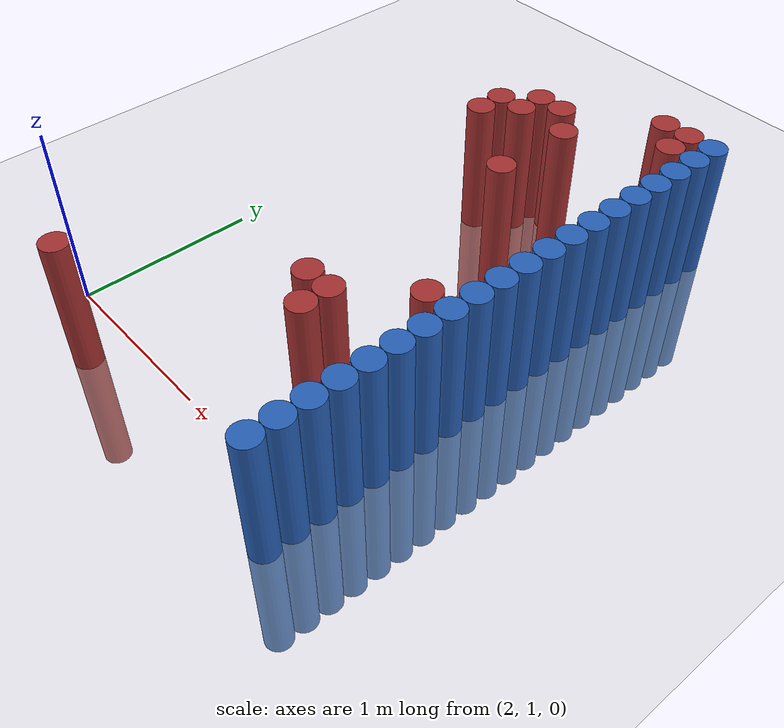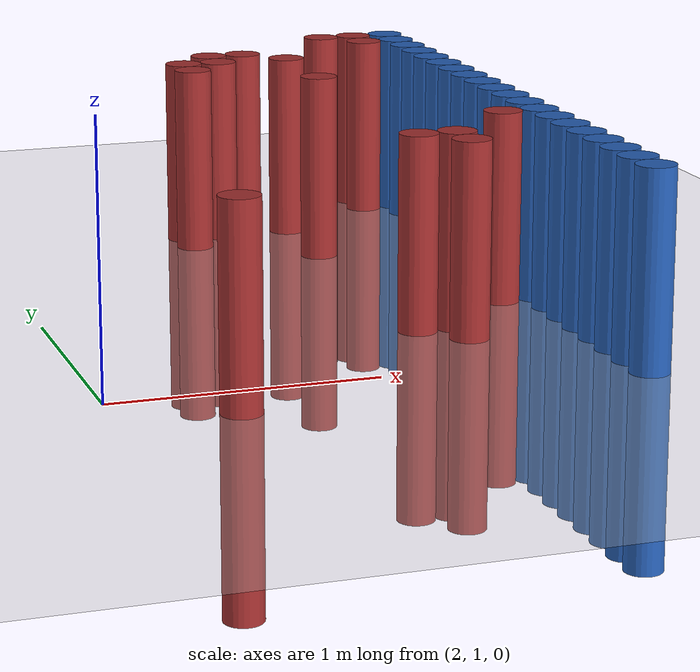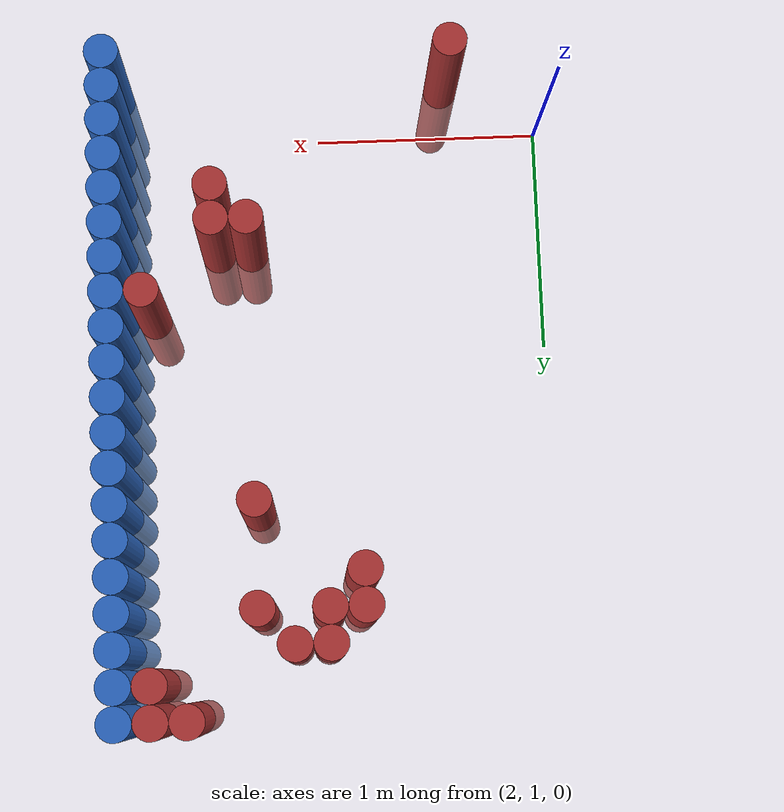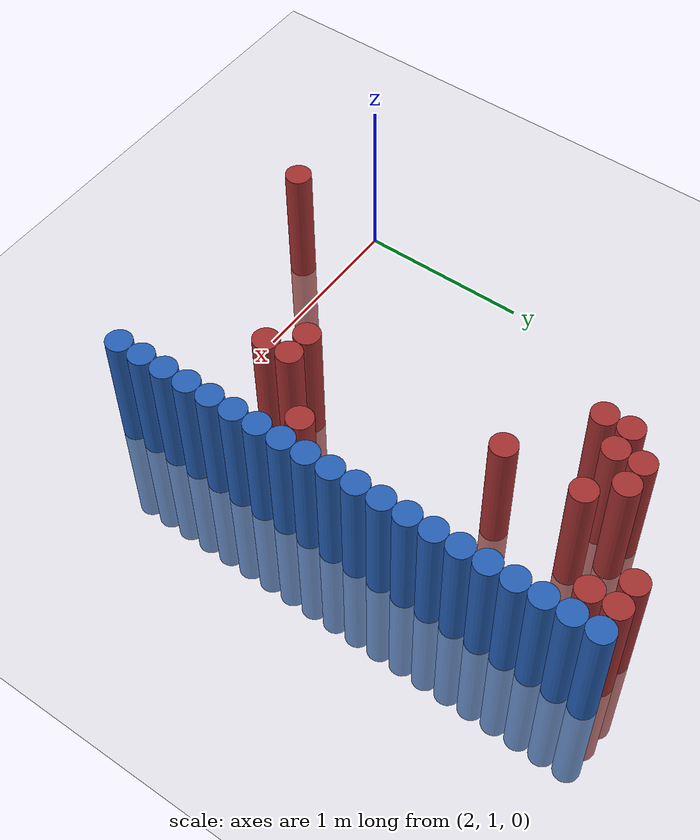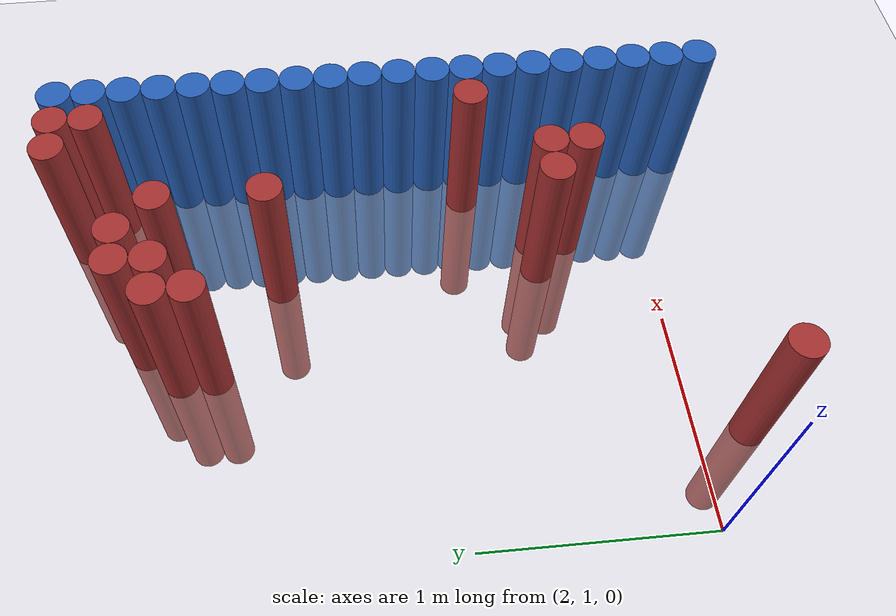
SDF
<sdf version="1.6">
 <world name="default">
  <model name="ground_plane">
   <static>1</static>
   <link name="link">
    <collision name="collision">
     <geometry><plane><normal>0 0 1</normal><size>100 100</size></plane></geometry>
     <surface><friction><ode><mu>100</mu><mu2>50</mu2></ode></friction></surface>
    </collision>
    <visual name="visual">
     <cast_shadows>0</cast_shadows>
     <geometry><plane><normal>0 0 1</normal><size>100 100</size></plane></geometry>
     <material>
      <script><uri>file://media/materials/scripts/gazebo.material</uri><name>Gazebo/Grey</name></script>
     </material>
    </visual>
   </link>
  </model>
  <model name="unit_cylinder_126">
   <static>1</static>
   <pose>3.925000 0.925000 0.000000 0.000000 0.000000 0.000000</pose>
   <link name="link">
    <inertial>
     <mass>1</mass>
     <inertia><ixx>0.145833</ixx><ixy>0</ixy><ixz>0</ixz><iyy>0.145833</iyy><iyz>0</iyz><izz>0.125</izz></inertia>
    </inertial>
    <collision name="collision">
     <geometry><cylinder><radius>0.075000</radius><length>1.5</length></cylinder></geometry>
    </collision>
    <visual name="visual">
     <geometry><cylinder><radius>0.075000</radius><length>1.5</length></cylinder></geometry>
     <material>
      <ambient>0.152000 0.379000 0.720000 1</ambient>
      <diffuse>0.152000 0.379000 0.720000 1</diffuse>
     </material>
     <material>
      <script><name>Gazebo/Grey</name><uri>file://media/materials/scripts/gazebo.material</uri></script>
     </material>
    </visual>
   </link>
  </model>
  <model name="unit_cylinder_128">
   <static>1</static>
   <pose>3.925000 1.075000 0.000000 0.000000 0.000000 0.000000</pose>
   <link name="link">
    <inertial>
     <mass>1</mass>
     <inertia><ixx>0.145833</ixx><ixy>0</ixy><ixz>0</ixz><iyy>0.145833</iyy><iyz>0</iyz><izz>0.125</izz></inertia>
    </inertial>
    <collision name="collision">
     <geometry><cylinder><radius>0.075000</radius><length>1.5</length></cylinder></geometry>
    </collision>
    <visual name="visual">
     <geometry><cylinder><radius>0.075000</radius><length>1.5</length></cylinder></geometry>
     <material>
      <ambient>0.152000 0.379000 0.720000 1</ambient>
      <diffuse>0.152000 0.379000 0.720000 1</diffuse>
     </material>
     <material>
      <script><name>Gazebo/Grey</name><uri>file://media/materials/scripts/gazebo.material</uri></script>
     </material>
    </visual>
   </link>
  </model>
  <model name="unit_cylinder_130">
   <static>1</static>
   <pose>3.925000 1.225000 0.000000 0.000000 0.000000 0.000000</pose>
   <link name="link">
    <inertial>
     <mass>1</mass>
     <inertia><ixx>0.145833</ixx><ixy>0</ixy><ixz>0</ixz><iyy>0.145833</iyy><iyz>0</iyz><izz>0.125</izz></inertia>
    </inertial>
    <collision name="collision">
     <geometry><cylinder><radius>0.075000</radius><length>1.5</length></cylinder></geometry>
    </collision>
    <visual name="visual">
     <geometry><cylinder><radius>0.075000</radius><length>1.5</length></cylinder></geometry>
     <material>
      <ambient>0.152000 0.379000 0.720000 1</ambient>
      <diffuse>0.152000 0.379000 0.720000 1</diffuse>
     </material>
     <material>
      <script><name>Gazebo/Grey</name><uri>file://media/materials/scripts/gazebo.material</uri></script>
     </material>
    </visual>
   </link>
  </model>
  <model name="unit_cylinder_132">
   <static>1</static>
   <pose>3.925000 1.375000 0.000000 0.000000 0.000000 0.000000</pose>
   <link name="link">
    <inertial>
     <mass>1</mass>
     <inertia><ixx>0.145833</ixx><ixy>0</ixy><ixz>0</ixz><iyy>0.145833</iyy><iyz>0</iyz><izz>0.125</izz></inertia>
    </inertial>
    <collision name="collision">
     <geometry><cylinder><radius>0.075000</radius><length>1.5</length></cylinder></geometry>
    </collision>
    <visual name="visual">
     <geometry><cylinder><radius>0.075000</radius><length>1.5</length></cylinder></geometry>
     <material>
      <ambient>0.152000 0.379000 0.720000 1</ambient>
      <diffuse>0.152000 0.379000 0.720000 1</diffuse>
     </material>
     <material>
      <script><name>Gazebo/Grey</name><uri>file://media/materials/scripts/gazebo.material</uri></script>
     </material>
    </visual>
   </link>
  </model>
  <model name="unit_cylinder_134">
   <static>1</static>
   <pose>3.925000 1.525000 0.000000 0.000000 0.000000 0.000000</pose>
   <link name="link">
    <inertial>
     <mass>1</mass>
     <inertia><ixx>0.145833</ixx><ixy>0</ixy><ixz>0</ixz><iyy>0.145833</iyy><iyz>0</iyz><izz>0.125</izz></inertia>
    </inertial>
    <collision name="collision">
     <geometry><cylinder><radius>0.075000</radius><length>1.5</length></cylinder></geometry>
    </collision>
    <visual name="visual">
     <geometry><cylinder><radius>0.075000</radius><length>1.5</length></cylinder></geometry>
     <material>
      <ambient>0.152000 0.379000 0.720000 1</ambient>
      <diffuse>0.152000 0.379000 0.720000 1</diffuse>
     </material>
     <material>
      <script><name>Gazebo/Grey</name><uri>file://media/materials/scripts/gazebo.material</uri></script>
     </material>
    </visual>
   </link>
  </model>
  <model name="unit_cylinder_136">
   <static>1</static>
   <pose>3.925000 1.675000 0.000000 0.000000 0.000000 0.000000</pose>
   <link name="link">
    <inertial>
     <mass>1</mass>
     <inertia><ixx>0.145833</ixx><ixy>0</ixy><ixz>0</ixz><iyy>0.145833</iyy><iyz>0</iyz><izz>0.125</izz></inertia>
    </inertial>
    <collision name="collision">
     <geometry><cylinder><radius>0.075000</radius><length>1.5</length></cylinder></geometry>
    </collision>
    <visual name="visual">
     <geometry><cylinder><radius>0.075000</radius><length>1.5</length></cylinder></geometry>
     <material>
      <ambient>0.152000 0.379000 0.720000 1</ambient>
      <diffuse>0.152000 0.379000 0.720000 1</diffuse>
     </material>
     <material>
      <script><name>Gazebo/Grey</name><uri>file://media/materials/scripts/gazebo.material</uri></script>
     </material>
    </visual>
   </link>
  </model>
  <model name="unit_cylinder_138">
   <static>1</static>
   <pose>3.925000 1.825000 0.000000 0.000000 0.000000 0.000000</pose>
   <link name="link">
    <inertial>
     <mass>1</mass>
     <inertia><ixx>0.145833</ixx><ixy>0</ixy><ixz>0</ixz><iyy>0.145833</iyy><iyz>0</iyz><izz>0.125</izz></inertia>
    </inertial>
    <collision name="collision">
     <geometry><cylinder><radius>0.075000</radius><length>1.5</length></cylinder></geometry>
    </collision>
    <visual name="visual">
     <geometry><cylinder><radius>0.075000</radius><length>1.5</length></cylinder></geometry>
     <material>
      <ambient>0.152000 0.379000 0.720000 1</ambient>
      <diffuse>0.152000 0.379000 0.720000 1</diffuse>
     </material>
     <material>
      <script><name>Gazebo/Grey</name><uri>file://media/materials/scripts/gazebo.material</uri></script>
     </material>
    </visual>
   </link>
  </model>
  <model name="unit_cylinder_140">
   <static>1</static>
   <pose>3.925000 1.975000 0.000000 0.000000 0.000000 0.000000</pose>
   <link name="link">
    <inertial>
     <mass>1</mass>
     <inertia><ixx>0.145833</ixx><ixy>0</ixy><ixz>0</ixz><iyy>0.145833</iyy><iyz>0</iyz><izz>0.125</izz></inertia>
    </inertial>
    <collision name="collision">
     <geometry><cylinder><radius>0.075000</radius><length>1.5</length></cylinder></geometry>
    </collision>
    <visual name="visual">
     <geometry><cylinder><radius>0.075000</radius><length>1.5</length></cylinder></geometry>
     <material>
      <ambient>0.152000 0.379000 0.720000 1</ambient>
      <diffuse>0.152000 0.379000 0.720000 1</diffuse>
     </material>
     <material>
      <script><name>Gazebo/Grey</name><uri>file://media/materials/scripts/gazebo.material</uri></script>
     </material>
    </visual>
   </link>
  </model>
  <model name="unit_cylinder_142">
   <static>1</static>
   <pose>3.925000 2.125000 0.000000 0.000000 0.000000 0.000000</pose>
   <link name="link">
    <inertial>
     <mass>1</mass>
     <inertia><ixx>0.145833</ixx><ixy>0</ixy><ixz>0</ixz><iyy>0.145833</iyy><iyz>0</iyz><izz>0.125</izz></inertia>
    </inertial>
    <collision name="collision">
     <geometry><cylinder><radius>0.075000</radius><length>1.5</length></cylinder></geometry>
    </collision>
    <visual name="visual">
     <geometry><cylinder><radius>0.075000</radius><length>1.5</length></cylinder></geometry>
     <material>
      <ambient>0.152000 0.379000 0.720000 1</ambient>
      <diffuse>0.152000 0.379000 0.720000 1</diffuse>
     </material>
     <material>
      <script><name>Gazebo/Grey</name><uri>file://media/materials/scripts/gazebo.material</uri></script>
     </material>
    </visual>
   </link>
  </model>
  <model name="unit_cylinder_144">
   <static>1</static>
   <pose>3.925000 2.275000 0.000000 0.000000 0.000000 0.000000</pose>
   <link name="link">
    <inertial>
     <mass>1</mass>
     <inertia><ixx>0.145833</ixx><ixy>0</ixy><ixz>0</ixz><iyy>0.145833</iyy><iyz>0</iyz><izz>0.125</izz></inertia>
    </inertial>
    <collision name="collision">
     <geometry><cylinder><radius>0.075000</radius><length>1.5</length></cylinder></geometry>
    </collision>
    <visual name="visual">
     <geometry><cylinder><radius>0.075000</radius><length>1.5</length></cylinder></geometry>
     <material>
      <ambient>0.152000 0.379000 0.720000 1</ambient>
      <diffuse>0.152000 0.379000 0.720000 1</diffuse>
     </material>
     <material>
      <script><name>Gazebo/Grey</name><uri>file://media/materials/scripts/gazebo.material</uri></script>
     </material>
    </visual>
   </link>
  </model>
  <model name="unit_cylinder_146">
   <static>1</static>
   <pose>3.925000 2.425000 0.000000 0.000000 0.000000 0.000000</pose>
   <link name="link">
    <inertial>
     <mass>1</mass>
     <inertia><ixx>0.145833</ixx><ixy>0</ixy><ixz>0</ixz><iyy>0.145833</iyy><iyz>0</iyz><izz>0.125</izz></inertia>
    </inertial>
    <collision name="collision">
     <geometry><cylinder><radius>0.075000</radius><length>1.5</length></cylinder></geometry>
    </collision>
    <visual name="visual">
     <geometry><cylinder><radius>0.075000</radius><length>1.5</length></cylinder></geometry>
     <material>
      <ambient>0.152000 0.379000 0.720000 1</ambient>
      <diffuse>0.152000 0.379000 0.720000 1</diffuse>
     </material>
     <material>
      <script><name>Gazebo/Grey</name><uri>file://media/materials/scripts/gazebo.material</uri></script>
     </material>
    </visual>
   </link>
  </model>
  <model name="unit_cylinder_148">
   <static>1</static>
   <pose>3.925000 2.575000 0.000000 0.000000 0.000000 0.000000</pose>
   <link name="link">
    <inertial>
     <mass>1</mass>
     <inertia><ixx>0.145833</ixx><ixy>0</ixy><ixz>0</ixz><iyy>0.145833</iyy><iyz>0</iyz><izz>0.125</izz></inertia>
    </inertial>
    <collision name="collision">
     <geometry><cylinder><radius>0.075000</radius><length>1.5</length></cylinder></geometry>
    </collision>
    <visual name="visual">
     <geometry><cylinder><radius>0.075000</radius><length>1.5</length></cylinder></geometry>
     <material>
      <ambient>0.152000 0.379000 0.720000 1</ambient>
      <diffuse>0.152000 0.379000 0.720000 1</diffuse>
     </material>
     <material>
      <script><name>Gazebo/Grey</name><uri>file://media/materials/scripts/gazebo.material</uri></script>
     </material>
    </visual>
   </link>
  </model>
  <model name="unit_cylinder_150">
   <static>1</static>
   <pose>3.925000 2.725000 0.000000 0.000000 0.000000 0.000000</pose>
   <link name="link">
    <inertial>
     <mass>1</mass>
     <inertia><ixx>0.145833</ixx><ixy>0</ixy><ixz>0</ixz><iyy>0.145833</iyy><iyz>0</iyz><izz>0.125</izz></inertia>
    </inertial>
    <collision name="collision">
     <geometry><cylinder><radius>0.075000</radius><length>1.5</length></cylinder></geometry>
    </collision>
    <visual name="visual">
     <geometry><cylinder><radius>0.075000</radius><length>1.5</length></cylinder></geometry>
     <material>
      <ambient>0.152000 0.379000 0.720000 1</ambient>
      <diffuse>0.152000 0.379000 0.720000 1</diffuse>
     </material>
     <material>
      <script><name>Gazebo/Grey</name><uri>file://media/materials/scripts/gazebo.material</uri></script>
     </material>
    </visual>
   </link>
  </model>
  <model name="unit_cylinder_152">
   <static>1</static>
   <pose>3.925000 2.875000 0.000000 0.000000 0.000000 0.000000</pose>
   <link name="link">
    <inertial>
     <mass>1</mass>
     <inertia><ixx>0.145833</ixx><ixy>0</ixy><ixz>0</ixz><iyy>0.145833</iyy><iyz>0</iyz><izz>0.125</izz></inertia>
    </inertial>
    <collision name="collision">
     <geometry><cylinder><radius>0.075000</radius><length>1.5</length></cylinder></geometry>
    </collision>
    <visual name="visual">
     <geometry><cylinder><radius>0.075000</radius><length>1.5</length></cylinder></geometry>
     <material>
      <ambient>0.152000 0.379000 0.720000 1</ambient>
      <diffuse>0.152000 0.379000 0.720000 1</diffuse>
     </material>
     <material>
      <script><name>Gazebo/Grey</name><uri>file://media/materials/scripts/gazebo.material</uri></script>
     </material>
    </visual>
   </link>
  </model>
  <model name="unit_cylinder_154">
   <static>1</static>
   <pose>3.925000 3.025000 0.000000 0.000000 0.000000 0.000000</pose>
   <link name="link">
    <inertial>
     <mass>1</mass>
     <inertia><ixx>0.145833</ixx><ixy>0</ixy><ixz>0</ixz><iyy>0.145833</iyy><iyz>0</iyz><izz>0.125</izz></inertia>
    </inertial>
    <collision name="collision">
     <geometry><cylinder><radius>0.075000</radius><length>1.5</length></cylinder></geometry>
    </collision>
    <visual name="visual">
     <geometry><cylinder><radius>0.075000</radius><length>1.5</length></cylinder></geometry>
     <material>
      <ambient>0.152000 0.379000 0.720000 1</ambient>
      <diffuse>0.152000 0.379000 0.720000 1</diffuse>
     </material>
     <material>
      <script><name>Gazebo/Grey</name><uri>file://media/materials/scripts/gazebo.material</uri></script>
     </material>
    </visual>
   </link>
  </model>
  <model name="unit_cylinder_156">
   <static>1</static>
   <pose>3.925000 3.175000 0.000000 0.000000 0.000000 0.000000</pose>
   <link name="link">
    <inertial>
     <mass>1</mass>
     <inertia><ixx>0.145833</ixx><ixy>0</ixy><ixz>0</ixz><iyy>0.145833</iyy><iyz>0</iyz><izz>0.125</izz></inertia>
    </inertial>
    <collision name="collision">
     <geometry><cylinder><radius>0.075000</radius><length>1.5</length></cylinder></geometry>
    </collision>
    <visual name="visual">
     <geometry><cylinder><radius>0.075000</radius><length>1.5</length></cylinder></geometry>
     <material>
      <ambient>0.152000 0.379000 0.720000 1</ambient>
      <diffuse>0.152000 0.379000 0.720000 1</diffuse>
     </material>
     <material>
      <script><name>Gazebo/Grey</name><uri>file://media/materials/scripts/gazebo.material</uri></script>
     </material>
    </visual>
   </link>
  </model>
  <model name="unit_cylinder_158">
   <static>1</static>
   <pose>3.925000 3.325000 0.000000 0.000000 0.000000 0.000000</pose>
   <link name="link">
    <inertial>
     <mass>1</mass>
     <inertia><ixx>0.145833</ixx><ixy>0</ixy><ixz>0</ixz><iyy>0.145833</iyy><iyz>0</iyz><izz>0.125</izz></inertia>
    </inertial>
    <collision name="collision">
     <geometry><cylinder><radius>0.075000</radius><length>1.5</length></cylinder></geometry>
    </collision>
    <visual name="visual">
     <geometry><cylinder><radius>0.075000</radius><length>1.5</length></cylinder></geometry>
     <material>
      <ambient>0.152000 0.379000 0.720000 1</ambient>
      <diffuse>0.152000 0.379000 0.720000 1</diffuse>
     </material>
     <material>
      <script><name>Gazebo/Grey</name><uri>file://media/materials/scripts/gazebo.material</uri></script>
     </material>
    </visual>
   </link>
  </model>
  <model name="unit_cylinder_160">
   <static>1</static>
   <pose>3.925000 3.475000 0.000000 0.000000 0.000000 0.000000</pose>
   <link name="link">
    <inertial>
     <mass>1</mass>
     <inertia><ixx>0.145833</ixx><ixy>0</ixy><ixz>0</ixz><iyy>0.145833</iyy><iyz>0</iyz><izz>0.125</izz></inertia>
    </inertial>
    <collision name="collision">
     <geometry><cylinder><radius>0.075000</radius><length>1.5</length></cylinder></geometry>
    </collision>
    <visual name="visual">
     <geometry><cylinder><radius>0.075000</radius><length>1.5</length></cylinder></geometry>
     <material>
      <ambient>0.152000 0.379000 0.720000 1</ambient>
      <diffuse>0.152000 0.379000 0.720000 1</diffuse>
     </material>
     <material>
      <script><name>Gazebo/Grey</name><uri>file://media/materials/scripts/gazebo.material</uri></script>
     </material>
    </visual>
   </link>
  </model>
  <model name="unit_cylinder_162">
   <static>1</static>
   <pose>3.925000 3.625000 0.000000 0.000000 0.000000 0.000000</pose>
   <link name="link">
    <inertial>
     <mass>1</mass>
     <inertia><ixx>0.145833</ixx><ixy>0</ixy><ixz>0</ixz><iyy>0.145833</iyy><iyz>0</iyz><izz>0.125</izz></inertia>
    </inertial>
    <collision name="collision">
     <geometry><cylinder><radius>0.075000</radius><length>1.5</length></cylinder></geometry>
    </collision>
    <visual name="visual">
     <geometry><cylinder><radius>0.075000</radius><length>1.5</length></cylinder></geometry>
     <material>
      <ambient>0.152000 0.379000 0.720000 1</ambient>
      <diffuse>0.152000 0.379000 0.720000 1</diffuse>
     </material>
     <material>
      <script><name>Gazebo/Grey</name><uri>file://media/materials/scripts/gazebo.material</uri></script>
     </material>
    </visual>
   </link>
  </model>
  <model name="unit_cylinder_390">
   <static>1</static>
   <pose>2.425000 0.775000 0.000000 0.000000 0.000000 0.000000</pose>
   <link name="link">
    <inertial>
     <mass>1</mass>
     <inertia><ixx>0.145833</ixx><ixy>0</ixy><ixz>0</ixz><iyy>0.145833</iyy><iyz>0</iyz><izz>0.125</izz></inertia>
    </inertial>
    <collision name="collision">
     <geometry><cylinder><radius>0.075000</radius><length>1.5</length></cylinder></geometry>
    </collision>
    <visual name="visual">
     <geometry><cylinder><radius>0.075000</radius><length>1.5</length></cylinder></geometry>
     <material>
      <ambient>0.648000 0.192000 0.192000 1</ambient>
      <diffuse>0.648000 0.192000 0.192000 1</diffuse>
     </material>
     <material>
      <script><name>Gazebo/Grey</name><uri>file://media/materials/scripts/gazebo.material</uri></script>
     </material>
    </visual>
   </link>
  </model>
  <model name="unit_cylinder_398">
   <static>1</static>
   <pose>2.875000 3.025000 0.000000 0.000000 0.000000 0.000000</pose>
   <link name="link">
    <inertial>
     <mass>1</mass>
     <inertia><ixx>0.145833</ixx><ixy>0</ixy><ixz>0</ixz><iyy>0.145833</iyy><iyz>0</iyz><izz>0.125</izz></inertia>
    </inertial>
    <collision name="collision">
     <geometry><cylinder><radius>0.075000</radius><length>1.5</length></cylinder></geometry>
    </collision>
    <visual name="visual">
     <geometry><cylinder><radius>0.075000</radius><length>1.5</length></cylinder></geometry>
     <material>
      <ambient>0.648000 0.192000 0.192000 1</ambient>
      <diffuse>0.648000 0.192000 0.192000 1</diffuse>
     </material>
     <material>
      <script><name>Gazebo/Grey</name><uri>file://media/materials/scripts/gazebo.material</uri></script>
     </material>
    </visual>
   </link>
  </model>
  <model name="unit_cylinder_399">
   <static>1</static>
   <pose>2.875000 3.175000 0.000000 0.000000 0.000000 0.000000</pose>
   <link name="link">
    <inertial>
     <mass>1</mass>
     <inertia><ixx>0.145833</ixx><ixy>0</ixy><ixz>0</ixz><iyy>0.145833</iyy><iyz>0</iyz><izz>0.125</izz></inertia>
    </inertial>
    <collision name="collision">
     <geometry><cylinder><radius>0.075000</radius><length>1.5</length></cylinder></geometry>
    </collision>
    <visual name="visual">
     <geometry><cylinder><radius>0.075000</radius><length>1.5</length></cylinder></geometry>
     <material>
      <ambient>0.648000 0.192000 0.192000 1</ambient>
      <diffuse>0.648000 0.192000 0.192000 1</diffuse>
     </material>
     <material>
      <script><name>Gazebo/Grey</name><uri>file://media/materials/scripts/gazebo.material</uri></script>
     </material>
    </visual>
   </link>
  </model>
  <model name="unit_cylinder_401">
   <static>1</static>
   <pose>3.025000 3.175000 0.000000 0.000000 0.000000 0.000000</pose>
   <link name="link">
    <inertial>
     <mass>1</mass>
     <inertia><ixx>0.145833</ixx><ixy>0</ixy><ixz>0</ixz><iyy>0.145833</iyy><iyz>0</iyz><izz>0.125</izz></inertia>
    </inertial>
    <collision name="collision">
     <geometry><cylinder><radius>0.075000</radius><length>1.5</length></cylinder></geometry>
    </collision>
    <visual name="visual">
     <geometry><cylinder><radius>0.075000</radius><length>1.5</length></cylinder></geometry>
     <material>
      <ambient>0.648000 0.192000 0.192000 1</ambient>
      <diffuse>0.648000 0.192000 0.192000 1</diffuse>
     </material>
     <material>
      <script><name>Gazebo/Grey</name><uri>file://media/materials/scripts/gazebo.material</uri></script>
     </material>
    </visual>
   </link>
  </model>
  <model name="unit_cylinder_402">
   <static>1</static>
   <pose>3.025000 3.325000 0.000000 0.000000 0.000000 0.000000</pose>
   <link name="link">
    <inertial>
     <mass>1</mass>
     <inertia><ixx>0.145833</ixx><ixy>0</ixy><ixz>0</ixz><iyy>0.145833</iyy><iyz>0</iyz><izz>0.125</izz></inertia>
    </inertial>
    <collision name="collision">
     <geometry><cylinder><radius>0.075000</radius><length>1.5</length></cylinder></geometry>
    </collision>
    <visual name="visual">
     <geometry><cylinder><radius>0.075000</radius><length>1.5</length></cylinder></geometry>
     <material>
      <ambient>0.648000 0.192000 0.192000 1</ambient>
      <diffuse>0.648000 0.192000 0.192000 1</diffuse>
     </material>
     <material>
      <script><name>Gazebo/Grey</name><uri>file://media/materials/scripts/gazebo.material</uri></script>
     </material>
    </visual>
   </link>
  </model>
  <model name="unit_cylinder_404">
   <static>1</static>
   <pose>3.175000 3.325000 0.000000 0.000000 0.000000 0.000000</pose>
   <link name="link">
    <inertial>
     <mass>1</mass>
     <inertia><ixx>0.145833</ixx><ixy>0</ixy><ixz>0</ixz><iyy>0.145833</iyy><iyz>0</iyz><izz>0.125</izz></inertia>
    </inertial>
    <collision name="collision">
     <geometry><cylinder><radius>0.075000</radius><length>1.5</length></cylinder></geometry>
    </collision>
    <visual name="visual">
     <geometry><cylinder><radius>0.075000</radius><length>1.5</length></cylinder></geometry>
     <material>
      <ambient>0.648000 0.192000 0.192000 1</ambient>
      <diffuse>0.648000 0.192000 0.192000 1</diffuse>
     </material>
     <material>
      <script><name>Gazebo/Grey</name><uri>file://media/materials/scripts/gazebo.material</uri></script>
     </material>
    </visual>
   </link>
  </model>
  <model name="unit_cylinder_407">
   <static>1</static>
   <pose>3.325000 1.525000 0.000000 0.000000 0.000000 0.000000</pose>
   <link name="link">
    <inertial>
     <mass>1</mass>
     <inertia><ixx>0.145833</ixx><ixy>0</ixy><ixz>0</ixz><iyy>0.145833</iyy><iyz>0</iyz><izz>0.125</izz></inertia>
    </inertial>
    <collision name="collision">
     <geometry><cylinder><radius>0.075000</radius><length>1.5</length></cylinder></geometry>
    </collision>
    <visual name="visual">
     <geometry><cylinder><radius>0.075000</radius><length>1.5</length></cylinder></geometry>
     <material>
      <ambient>0.648000 0.192000 0.192000 1</ambient>
      <diffuse>0.648000 0.192000 0.192000 1</diffuse>
     </material>
     <material>
      <script><name>Gazebo/Grey</name><uri>file://media/materials/scripts/gazebo.material</uri></script>
     </material>
    </visual>
   </link>
  </model>
  <model name="unit_cylinder_408">
   <static>1</static>
   <pose>3.325000 2.725000 0.000000 0.000000 0.000000 0.000000</pose>
   <link name="link">
    <inertial>
     <mass>1</mass>
     <inertia><ixx>0.145833</ixx><ixy>0</ixy><ixz>0</ixz><iyy>0.145833</iyy><iyz>0</iyz><izz>0.125</izz></inertia>
    </inertial>
    <collision name="collision">
     <geometry><cylinder><radius>0.075000</radius><length>1.5</length></cylinder></geometry>
    </collision>
    <visual name="visual">
     <geometry><cylinder><radius>0.075000</radius><length>1.5</length></cylinder></geometry>
     <material>
      <ambient>0.648000 0.192000 0.192000 1</ambient>
      <diffuse>0.648000 0.192000 0.192000 1</diffuse>
     </material>
     <material>
      <script><name>Gazebo/Grey</name><uri>file://media/materials/scripts/gazebo.material</uri></script>
     </material>
    </visual>
   </link>
  </model>
  <model name="unit_cylinder_409">
   <static>1</static>
   <pose>3.325000 3.175000 0.000000 0.000000 0.000000 0.000000</pose>
   <link name="link">
    <inertial>
     <mass>1</mass>
     <inertia><ixx>0.145833</ixx><ixy>0</ixy><ixz>0</ixz><iyy>0.145833</iyy><iyz>0</iyz><izz>0.125</izz></inertia>
    </inertial>
    <collision name="collision">
     <geometry><cylinder><radius>0.075000</radius><length>1.5</length></cylinder></geometry>
    </collision>
    <visual name="visual">
     <geometry><cylinder><radius>0.075000</radius><length>1.5</length></cylinder></geometry>
     <material>
      <ambient>0.648000 0.192000 0.192000 1</ambient>
      <diffuse>0.648000 0.192000 0.192000 1</diffuse>
     </material>
     <material>
      <script><name>Gazebo/Grey</name><uri>file://media/materials/scripts/gazebo.material</uri></script>
     </material>
    </visual>
   </link>
  </model>
  <model name="unit_cylinder_411">
   <static>1</static>
   <pose>3.475000 1.375000 0.000000 0.000000 0.000000 0.000000</pose>
   <link name="link">
    <inertial>
     <mass>1</mass>
     <inertia><ixx>0.145833</ixx><ixy>0</ixy><ixz>0</ixz><iyy>0.145833</iyy><iyz>0</iyz><izz>0.125</izz></inertia>
    </inertial>
    <collision name="collision">
     <geometry><cylinder><radius>0.075000</radius><length>1.5</length></cylinder></geometry>
    </collision>
    <visual name="visual">
     <geometry><cylinder><radius>0.075000</radius><length>1.5</length></cylinder></geometry>
     <material>
      <ambient>0.648000 0.192000 0.192000 1</ambient>
      <diffuse>0.648000 0.192000 0.192000 1</diffuse>
     </material>
     <material>
      <script><name>Gazebo/Grey</name><uri>file://media/materials/scripts/gazebo.material</uri></script>
     </material>
    </visual>
   </link>
  </model>
  <model name="unit_cylinder_412">
   <static>1</static>
   <pose>3.475000 1.525000 0.000000 0.000000 0.000000 0.000000</pose>
   <link name="link">
    <inertial>
     <mass>1</mass>
     <inertia><ixx>0.145833</ixx><ixy>0</ixy><ixz>0</ixz><iyy>0.145833</iyy><iyz>0</iyz><izz>0.125</izz></inertia>
    </inertial>
    <collision name="collision">
     <geometry><cylinder><radius>0.075000</radius><length>1.5</length></cylinder></geometry>
    </collision>
    <visual name="visual">
     <geometry><cylinder><radius>0.075000</radius><length>1.5</length></cylinder></geometry>
     <material>
      <ambient>0.648000 0.192000 0.192000 1</ambient>
      <diffuse>0.648000 0.192000 0.192000 1</diffuse>
     </material>
     <material>
      <script><name>Gazebo/Grey</name><uri>file://media/materials/scripts/gazebo.material</uri></script>
     </material>
    </visual>
   </link>
  </model>
  <model name="unit_cylinder_418">
   <static>1</static>
   <pose>3.625000 3.625000 0.000000 0.000000 0.000000 0.000000</pose>
   <link name="link">
    <inertial>
     <mass>1</mass>
     <inertia><ixx>0.145833</ixx><ixy>0</ixy><ixz>0</ixz><iyy>0.145833</iyy><iyz>0</iyz><izz>0.125</izz></inertia>
    </inertial>
    <collision name="collision">
     <geometry><cylinder><radius>0.075000</radius><length>1.5</length></cylinder></geometry>
    </collision>
    <visual name="visual">
     <geometry><cylinder><radius>0.075000</radius><length>1.5</length></cylinder></geometry>
     <material>
      <ambient>0.648000 0.192000 0.192000 1</ambient>
      <diffuse>0.648000 0.192000 0.192000 1</diffuse>
     </material>
     <material>
      <script><name>Gazebo/Grey</name><uri>file://media/materials/scripts/gazebo.material</uri></script>
     </material>
    </visual>
   </link>
  </model>
  <model name="unit_cylinder_432">
   <static>1</static>
   <pose>3.775000 1.825000 0.000000 0.000000 0.000000 0.000000</pose>
   <link name="link">
    <inertial>
     <mass>1</mass>
     <inertia><ixx>0.145833</ixx><ixy>0</ixy><ixz>0</ixz><iyy>0.145833</iyy><iyz>0</iyz><izz>0.125</izz></inertia>
    </inertial>
    <collision name="collision">
     <geometry><cylinder><radius>0.075000</radius><length>1.5</length></cylinder></geometry>
    </collision>
    <visual name="visual">
     <geometry><cylinder><radius>0.075000</radius><length>1.5</length></cylinder></geometry>
     <material>
      <ambient>0.648000 0.192000 0.192000 1</ambient>
      <diffuse>0.648000 0.192000 0.192000 1</diffuse>
     </material>
     <material>
      <script><name>Gazebo/Grey</name><uri>file://media/materials/scripts/gazebo.material</uri></script>
     </material>
    </visual>
   </link>
  </model>
  <model name="unit_cylinder_433">
   <static>1</static>
   <pose>3.775000 3.475000 0.000000 0.000000 0.000000 0.000000</pose>
   <link name="link">
    <inertial>
     <mass>1</mass>
     <inertia><ixx>0.145833</ixx><ixy>0</ixy><ixz>0</ixz><iyy>0.145833</iyy><iyz>0</iyz><izz>0.125</izz></inertia>
    </inertial>
    <collision name="collision">
     <geometry><cylinder><radius>0.075000</radius><length>1.5</length></cylinder></geometry>
    </collision>
    <visual name="visual">
     <geometry><cylinder><radius>0.075000</radius><length>1.5</length></cylinder></geometry>
     <material>
      <ambient>0.648000 0.192000 0.192000 1</ambient>
      <diffuse>0.648000 0.192000 0.192000 1</diffuse>
     </material>
     <material>
      <script><name>Gazebo/Grey</name><uri>file://media/materials/scripts/gazebo.material</uri></script>
     </material>
    </visual>
   </link>
  </model>
  <model name="unit_cylinder_434">
   <static>1</static>
   <pose>3.775000 3.625000 0.000000 0.000000 0.000000 0.000000</pose>
   <link name="link">
    <inertial>
     <mass>1</mass>
     <inertia><ixx>0.145833</ixx><ixy>0</ixy><ixz>0</ixz><iyy>0.145833</iyy><iyz>0</iyz><izz>0.125</izz></inertia>
    </inertial>
    <collision name="collision">
     <geometry><cylinder><radius>0.075000</radius><length>1.5</length></cylinder></geometry>
    </collision>
    <visual name="visual">
     <geometry><cylinder><radius>0.075000</radius><length>1.5</length></cylinder></geometry>
     <material>
      <ambient>0.648000 0.192000 0.192000 1</ambient>
      <diffuse>0.648000 0.192000 0.192000 1</diffuse>
     </material>
     <material>
      <script><name>Gazebo/Grey</name><uri>file://media/materials/scripts/gazebo.material</uri></script>
     </material>
    </visual>
   </link>
  </model>
  <model name="unit_cylinder_457">
   <static>1</static>
   <pose>3.925000 0.775000 0.000000 0.000000 0.000000 0.000000</pose>
   <link name="link">
    <inertial>
     <mass>1</mass>
     <inertia><ixx>0.145833</ixx><ixy>0</ixy><ixz>0</ixz><iyy>0.145833</iyy><iyz>0</iyz><izz>0.125</izz></inertia>
    </inertial>
    <collision name="collision">
     <geometry><cylinder><radius>0.075000</radius><length>1.5</length></cylinder></geometry>
    </collision>
    <visual name="visual">
     <geometry><cylinder><radius>0.075000</radius><length>1.5</length></cylinder></geometry>
     <material>
      <ambient>0.152000 0.379000 0.720000 1</ambient>
      <diffuse>0.152000 0.379000 0.720000 1</diffuse>
     </material>
     <material>
      <script><name>Gazebo/Grey</name><uri>file://media/materials/scripts/gazebo.material</uri></script>
     </material>
    </visual>
   </link>
  </model>
  <model name="unit_cylinder_458">
   <static>1</static>
   <pose>3.925000 0.925000 0.000000 0.000000 0.000000 0.000000</pose>
   <link name="link">
    <inertial>
     <mass>1</mass>
     <inertia><ixx>0.145833</ixx><ixy>0</ixy><ixz>0</ixz><iyy>0.145833</iyy><iyz>0</iyz><izz>0.125</izz></inertia>
    </inertial>
    <collision name="collision">
     <geometry><cylinder><radius>0.075000</radius><length>1.5</length></cylinder></geometry>
    </collision>
    <visual name="visual">
     <geometry><cylinder><radius>0.075000</radius><length>1.5</length></cylinder></geometry>
     <material>
      <ambient>0.152000 0.379000 0.720000 1</ambient>
      <diffuse>0.152000 0.379000 0.720000 1</diffuse>
     </material>
     <material>
      <script><name>Gazebo/Grey</name><uri>file://media/materials/scripts/gazebo.material</uri></script>
     </material>
    </visual>
   </link>
  </model>
  <model name="unit_cylinder_459">
   <static>1</static>
   <pose>3.925000 1.075000 0.000000 0.000000 0.000000 0.000000</pose>
   <link name="link">
    <inertial>
     <mass>1</mass>
     <inertia><ixx>0.145833</ixx><ixy>0</ixy><ixz>0</ixz><iyy>0.145833</iyy><iyz>0</iyz><izz>0.125</izz></inertia>
    </inertial>
    <collision name="collision">
     <geometry><cylinder><radius>0.075000</radius><length>1.5</length></cylinder></geometry>
    </collision>
    <visual name="visual">
     <geometry><cylinder><radius>0.075000</radius><length>1.5</length></cylinder></geometry>
     <material>
      <ambient>0.152000 0.379000 0.720000 1</ambient>
      <diffuse>0.152000 0.379000 0.720000 1</diffuse>
     </material>
     <material>
      <script><name>Gazebo/Grey</name><uri>file://media/materials/scripts/gazebo.material</uri></script>
     </material>
    </visual>
   </link>
  </model>
  <model name="unit_cylinder_460">
   <static>1</static>
   <pose>3.925000 1.225000 0.000000 0.000000 0.000000 0.000000</pose>
   <link name="link">
    <inertial>
     <mass>1</mass>
     <inertia><ixx>0.145833</ixx><ixy>0</ixy><ixz>0</ixz><iyy>0.145833</iyy><iyz>0</iyz><izz>0.125</izz></inertia>
    </inertial>
    <collision name="collision">
     <geometry><cylinder><radius>0.075000</radius><length>1.5</length></cylinder></geometry>
    </collision>
    <visual name="visual">
     <geometry><cylinder><radius>0.075000</radius><length>1.5</length></cylinder></geometry>
     <material>
      <ambient>0.152000 0.379000 0.720000 1</ambient>
      <diffuse>0.152000 0.379000 0.720000 1</diffuse>
     </material>
     <material>
      <script><name>Gazebo/Grey</name><uri>file://media/materials/scripts/gazebo.material</uri></script>
     </material>
    </visual>
   </link>
  </model>
  <model name="unit_cylinder_461">
   <static>1</static>
   <pose>3.925000 1.375000 0.000000 0.000000 0.000000 0.000000</pose>
   <link name="link">
    <inertial>
     <mass>1</mass>
     <inertia><ixx>0.145833</ixx><ixy>0</ixy><ixz>0</ixz><iyy>0.145833</iyy><iyz>0</iyz><izz>0.125</izz></inertia>
    </inertial>
    <collision name="collision">
     <geometry><cylinder><radius>0.075000</radius><length>1.5</length></cylinder></geometry>
    </collision>
    <visual name="visual">
     <geometry><cylinder><radius>0.075000</radius><length>1.5</length></cylinder></geometry>
     <material>
      <ambient>0.152000 0.379000 0.720000 1</ambient>
      <diffuse>0.152000 0.379000 0.720000 1</diffuse>
     </material>
     <material>
      <script><name>Gazebo/Grey</name><uri>file://media/materials/scripts/gazebo.material</uri></script>
     </material>
    </visual>
   </link>
  </model>
  <model name="unit_cylinder_462">
   <static>1</static>
   <pose>3.925000 1.525000 0.000000 0.000000 0.000000 0.000000</pose>
   <link name="link">
    <inertial>
     <mass>1</mass>
     <inertia><ixx>0.145833</ixx><ixy>0</ixy><ixz>0</ixz><iyy>0.145833</iyy><iyz>0</iyz><izz>0.125</izz></inertia>
    </inertial>
    <collision name="collision">
     <geometry><cylinder><radius>0.075000</radius><length>1.5</length></cylinder></geometry>
    </collision>
    <visual name="visual">
     <geometry><cylinder><radius>0.075000</radius><length>1.5</length></cylinder></geometry>
     <material>
      <ambient>0.152000 0.379000 0.720000 1</ambient>
      <diffuse>0.152000 0.379000 0.720000 1</diffuse>
     </material>
     <material>
      <script><name>Gazebo/Grey</name><uri>file://media/materials/scripts/gazebo.material</uri></script>
     </material>
    </visual>
   </link>
  </model>
  <model name="unit_cylinder_463">
   <static>1</static>
   <pose>3.925000 1.675000 0.000000 0.000000 0.000000 0.000000</pose>
   <link name="link">
    <inertial>
     <mass>1</mass>
     <inertia><ixx>0.145833</ixx><ixy>0</ixy><ixz>0</ixz><iyy>0.145833</iyy><iyz>0</iyz><izz>0.125</izz></inertia>
    </inertial>
    <collision name="collision">
     <geometry><cylinder><radius>0.075000</radius><length>1.5</length></cylinder></geometry>
    </collision>
    <visual name="visual">
     <geometry><cylinder><radius>0.075000</radius><length>1.5</length></cylinder></geometry>
     <material>
      <ambient>0.152000 0.379000 0.720000 1</ambient>
      <diffuse>0.152000 0.379000 0.720000 1</diffuse>
     </material>
     <material>
      <script><name>Gazebo/Grey</name><uri>file://media/materials/scripts/gazebo.material</uri></script>
     </material>
    </visual>
   </link>
  </model>
  <model name="unit_cylinder_464">
   <static>1</static>
   <pose>3.925000 1.825000 0.000000 0.000000 0.000000 0.000000</pose>
   <link name="link">
    <inertial>
     <mass>1</mass>
     <inertia><ixx>0.145833</ixx><ixy>0</ixy><ixz>0</ixz><iyy>0.145833</iyy><iyz>0</iyz><izz>0.125</izz></inertia>
    </inertial>
    <collision name="collision">
     <geometry><cylinder><radius>0.075000</radius><length>1.5</length></cylinder></geometry>
    </collision>
    <visual name="visual">
     <geometry><cylinder><radius>0.075000</radius><length>1.5</length></cylinder></geometry>
     <material>
      <ambient>0.152000 0.379000 0.720000 1</ambient>
      <diffuse>0.152000 0.379000 0.720000 1</diffuse>
     </material>
     <material>
      <script><name>Gazebo/Grey</name><uri>file://media/materials/scripts/gazebo.material</uri></script>
     </material>
    </visual>
   </link>
  </model>
  <model name="unit_cylinder_465">
   <static>1</static>
   <pose>3.925000 1.975000 0.000000 0.000000 0.000000 0.000000</pose>
   <link name="link">
    <inertial>
     <mass>1</mass>
     <inertia><ixx>0.145833</ixx><ixy>0</ixy><ixz>0</ixz><iyy>0.145833</iyy><iyz>0</iyz><izz>0.125</izz></inertia>
    </inertial>
    <collision name="collision">
     <geometry><cylinder><radius>0.075000</radius><length>1.5</length></cylinder></geometry>
    </collision>
    <visual name="visual">
     <geometry><cylinder><radius>0.075000</radius><length>1.5</length></cylinder></geometry>
     <material>
      <ambient>0.152000 0.379000 0.720000 1</ambient>
      <diffuse>0.152000 0.379000 0.720000 1</diffuse>
     </material>
     <material>
      <script><name>Gazebo/Grey</name><uri>file://media/materials/scripts/gazebo.material</uri></script>
     </material>
    </visual>
   </link>
  </model>
  <model name="unit_cylinder_466">
   <static>1</static>
   <pose>3.925000 2.125000 0.000000 0.000000 0.000000 0.000000</pose>
   <link name="link">
    <inertial>
     <mass>1</mass>
     <inertia><ixx>0.145833</ixx><ixy>0</ixy><ixz>0</ixz><iyy>0.145833</iyy><iyz>0</iyz><izz>0.125</izz></inertia>
    </inertial>
    <collision name="collision">
     <geometry><cylinder><radius>0.075000</radius><length>1.5</length></cylinder></geometry>
    </collision>
    <visual name="visual">
     <geometry><cylinder><radius>0.075000</radius><length>1.5</length></cylinder></geometry>
     <material>
      <ambient>0.152000 0.379000 0.720000 1</ambient>
      <diffuse>0.152000 0.379000 0.720000 1</diffuse>
     </material>
     <material>
      <script><name>Gazebo/Grey</name><uri>file://media/materials/scripts/gazebo.material</uri></script>
     </material>
    </visual>
   </link>
  </model>
  <model name="unit_cylinder_467">
   <static>1</static>
   <pose>3.925000 2.275000 0.000000 0.000000 0.000000 0.000000</pose>
   <link name="link">
    <inertial>
     <mass>1</mass>
     <inertia><ixx>0.145833</ixx><ixy>0</ixy><ixz>0</ixz><iyy>0.145833</iyy><iyz>0</iyz><izz>0.125</izz></inertia>
    </inertial>
    <collision name="collision">
     <geometry><cylinder><radius>0.075000</radius><length>1.5</length></cylinder></geometry>
    </collision>
    <visual name="visual">
     <geometry><cylinder><radius>0.075000</radius><length>1.5</length></cylinder></geometry>
     <material>
      <ambient>0.152000 0.379000 0.720000 1</ambient>
      <diffuse>0.152000 0.379000 0.720000 1</diffuse>
     </material>
     <material>
      <script><name>Gazebo/Grey</name><uri>file://media/materials/scripts/gazebo.material</uri></script>
     </material>
    </visual>
   </link>
  </model>
  <model name="unit_cylinder_468">
   <static>1</static>
   <pose>3.925000 2.425000 0.000000 0.000000 0.000000 0.000000</pose>
   <link name="link">
    <inertial>
     <mass>1</mass>
     <inertia><ixx>0.145833</ixx><ixy>0</ixy><ixz>0</ixz><iyy>0.145833</iyy><iyz>0</iyz><izz>0.125</izz></inertia>
    </inertial>
    <collision name="collision">
     <geometry><cylinder><radius>0.075000</radius><length>1.5</length></cylinder></geometry>
    </collision>
    <visual name="visual">
     <geometry><cylinder><radius>0.075000</radius><length>1.5</length></cylinder></geometry>
     <material>
      <ambient>0.152000 0.379000 0.720000 1</ambient>
      <diffuse>0.152000 0.379000 0.720000 1</diffuse>
     </material>
     <material>
      <script><name>Gazebo/Grey</name><uri>file://media/materials/scripts/gazebo.material</uri></script>
     </material>
    </visual>
   </link>
  </model>
  <model name="unit_cylinder_469">
   <static>1</static>
   <pose>3.925000 2.575000 0.000000 0.000000 0.000000 0.000000</pose>
   <link name="link">
    <inertial>
     <mass>1</mass>
     <inertia><ixx>0.145833</ixx><ixy>0</ixy><ixz>0</ixz><iyy>0.145833</iyy><iyz>0</iyz><izz>0.125</izz></inertia>
    </inertial>
    <collision name="collision">
     <geometry><cylinder><radius>0.075000</radius><length>1.5</length></cylinder></geometry>
    </collision>
    <visual name="visual">
     <geometry><cylinder><radius>0.075000</radius><length>1.5</length></cylinder></geometry>
     <material>
      <ambient>0.152000 0.379000 0.720000 1</ambient>
      <diffuse>0.152000 0.379000 0.720000 1</diffuse>
     </material>
     <material>
      <script><name>Gazebo/Grey</name><uri>file://media/materials/scripts/gazebo.material</uri></script>
     </material>
    </visual>
   </link>
  </model>
  <model name="unit_cylinder_470">
   <static>1</static>
   <pose>3.925000 2.725000 0.000000 0.000000 0.000000 0.000000</pose>
   <link name="link">
    <inertial>
     <mass>1</mass>
     <inertia><ixx>0.145833</ixx><ixy>0</ixy><ixz>0</ixz><iyy>0.145833</iyy><iyz>0</iyz><izz>0.125</izz></inertia>
    </inertial>
    <collision name="collision">
     <geometry><cylinder><radius>0.075000</radius><length>1.5</length></cylinder></geometry>
    </collision>
    <visual name="visual">
     <geometry><cylinder><radius>0.075000</radius><length>1.5</length></cylinder></geometry>
     <material>
      <ambient>0.152000 0.379000 0.720000 1</ambient>
      <diffuse>0.152000 0.379000 0.720000 1</diffuse>
     </material>
     <material>
      <script><name>Gazebo/Grey</name><uri>file://media/materials/scripts/gazebo.material</uri></script>
     </material>
    </visual>
   </link>
  </model>
  <model name="unit_cylinder_471">
   <static>1</static>
   <pose>3.925000 2.875000 0.000000 0.000000 0.000000 0.000000</pose>
   <link name="link">
    <inertial>
     <mass>1</mass>
     <inertia><ixx>0.145833</ixx><ixy>0</ixy><ixz>0</ixz><iyy>0.145833</iyy><iyz>0</iyz><izz>0.125</izz></inertia>
    </inertial>
    <collision name="collision">
     <geometry><cylinder><radius>0.075000</radius><length>1.5</length></cylinder></geometry>
    </collision>
    <visual name="visual">
     <geometry><cylinder><radius>0.075000</radius><length>1.5</length></cylinder></geometry>
     <material>
      <ambient>0.152000 0.379000 0.720000 1</ambient>
      <diffuse>0.152000 0.379000 0.720000 1</diffuse>
     </material>
     <material>
      <script><name>Gazebo/Grey</name><uri>file://media/materials/scripts/gazebo.material</uri></script>
     </material>
    </visual>
   </link>
  </model>
  <model name="unit_cylinder_472">
   <static>1</static>
   <pose>3.925000 3.025000 0.000000 0.000000 0.000000 0.000000</pose>
   <link name="link">
    <inertial>
     <mass>1</mass>
     <inertia><ixx>0.145833</ixx><ixy>0</ixy><ixz>0</ixz><iyy>0.145833</iyy><iyz>0</iyz><izz>0.125</izz></inertia>
    </inertial>
    <collision name="collision">
     <geometry><cylinder><radius>0.075000</radius><length>1.5</length></cylinder></geometry>
    </collision>
    <visual name="visual">
     <geometry><cylinder><radius>0.075000</radius><length>1.5</length></cylinder></geometry>
     <material>
      <ambient>0.152000 0.379000 0.720000 1</ambient>
      <diffuse>0.152000 0.379000 0.720000 1</diffuse>
     </material>
     <material>
      <script><name>Gazebo/Grey</name><uri>file://media/materials/scripts/gazebo.material</uri></script>
     </material>
    </visual>
   </link>
  </model>
  <model name="unit_cylinder_473">
   <static>1</static>
   <pose>3.925000 3.175000 0.000000 0.000000 0.000000 0.000000</pose>
   <link name="link">
    <inertial>
     <mass>1</mass>
     <inertia><ixx>0.145833</ixx><ixy>0</ixy><ixz>0</ixz><iyy>0.145833</iyy><iyz>0</iyz><izz>0.125</izz></inertia>
    </inertial>
    <collision name="collision">
     <geometry><cylinder><radius>0.075000</radius><length>1.5</length></cylinder></geometry>
    </collision>
    <visual name="visual">
     <geometry><cylinder><radius>0.075000</radius><length>1.5</length></cylinder></geometry>
     <material>
      <ambient>0.152000 0.379000 0.720000 1</ambient>
      <diffuse>0.152000 0.379000 0.720000 1</diffuse>
     </material>
     <material>
      <script><name>Gazebo/Grey</name><uri>file://media/materials/scripts/gazebo.material</uri></script>
     </material>
    </visual>
   </link>
  </model>
  <model name="unit_cylinder_474">
   <static>1</static>
   <pose>3.925000 3.325000 0.000000 0.000000 0.000000 0.000000</pose>
   <link name="link">
    <inertial>
     <mass>1</mass>
     <inertia><ixx>0.145833</ixx><ixy>0</ixy><ixz>0</ixz><iyy>0.145833</iyy><iyz>0</iyz><izz>0.125</izz></inertia>
    </inertial>
    <collision name="collision">
     <geometry><cylinder><radius>0.075000</radius><length>1.5</length></cylinder></geometry>
    </collision>
    <visual name="visual">
     <geometry><cylinder><radius>0.075000</radius><length>1.5</length></cylinder></geometry>
     <material>
      <ambient>0.152000 0.379000 0.720000 1</ambient>
      <diffuse>0.152000 0.379000 0.720000 1</diffuse>
     </material>
     <material>
      <script><name>Gazebo/Grey</name><uri>file://media/materials/scripts/gazebo.material</uri></script>
     </material>
    </visual>
   </link>
  </model>
  <model name="unit_cylinder_475">
   <static>1</static>
   <pose>3.925000 3.475000 0.000000 0.000000 0.000000 0.000000</pose>
   <link name="link">
    <inertial>
     <mass>1</mass>
     <inertia><ixx>0.145833</ixx><ixy>0</ixy><ixz>0</ixz><iyy>0.145833</iyy><iyz>0</iyz><izz>0.125</izz></inertia>
    </inertial>
    <collision name="collision">
     <geometry><cylinder><radius>0.075000</radius><length>1.5</length></cylinder></geometry>
    </collision>
    <visual name="visual">
     <geometry><cylinder><radius>0.075000</radius><length>1.5</length></cylinder></geometry>
     <material>
      <ambient>0.152000 0.379000 0.720000 1</ambient>
      <diffuse>0.152000 0.379000 0.720000 1</diffuse>
     </material>
     <material>
      <script><name>Gazebo/Grey</name><uri>file://media/materials/scripts/gazebo.material</uri></script>
     </material>
    </visual>
   </link>
  </model>
  <model name="unit_cylinder_476">
   <static>1</static>
   <pose>3.925000 3.625000 0.000000 0.000000 0.000000 0.000000</pose>
   <link name="link">
    <inertial>
     <mass>1</mass>
     <inertia><ixx>0.145833</ixx><ixy>0</ixy><ixz>0</ixz><iyy>0.145833</iyy><iyz>0</iyz><izz>0.125</izz></inertia>
    </inertial>
    <collision name="collision">
     <geometry><cylinder><radius>0.075000</radius><length>1.5</length></cylinder></geometry>
    </collision>
    <visual name="visual">
     <geometry><cylinder><radius>0.075000</radius><length>1.5</length></cylinder></geometry>
     <material>
      <ambient>0.152000 0.379000 0.720000 1</ambient>
      <diffuse>0.152000 0.379000 0.720000 1</diffuse>
     </material>
     <material>
      <script><name>Gazebo/Grey</name><uri>file://media/materials/scripts/gazebo.material</uri></script>
     </material>
    </visual>
   </link>
  </model>
 </world>
</sdf>
